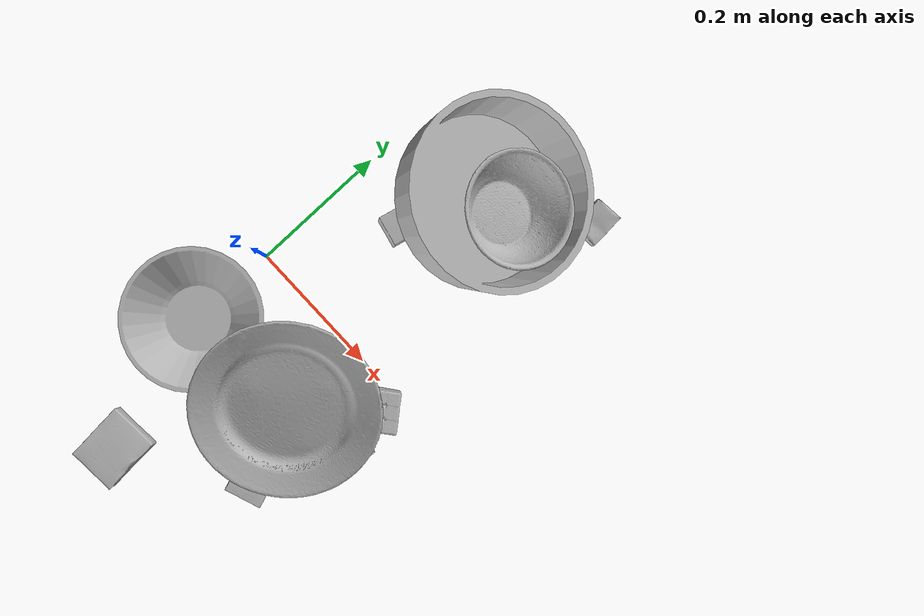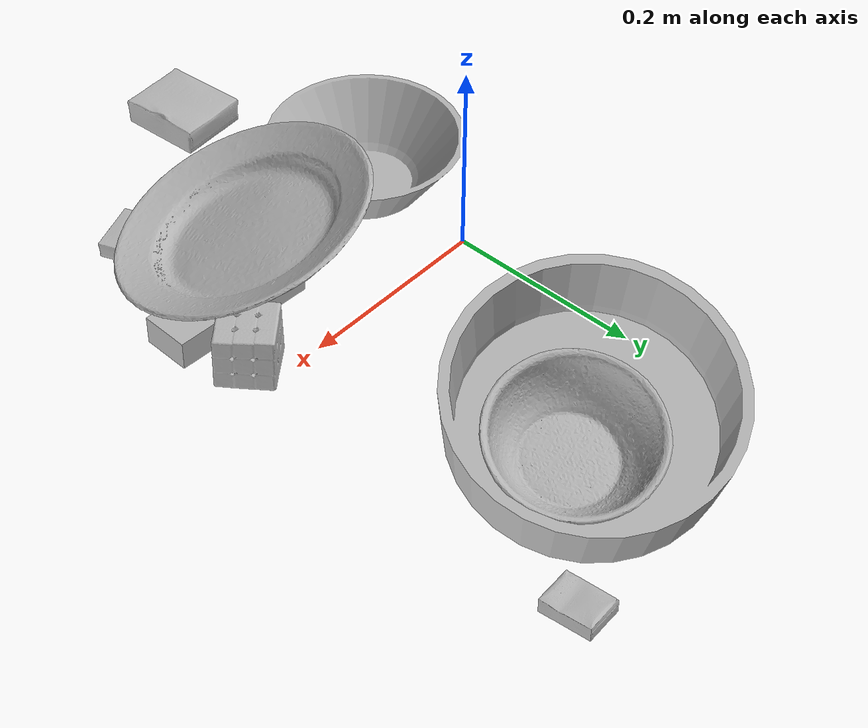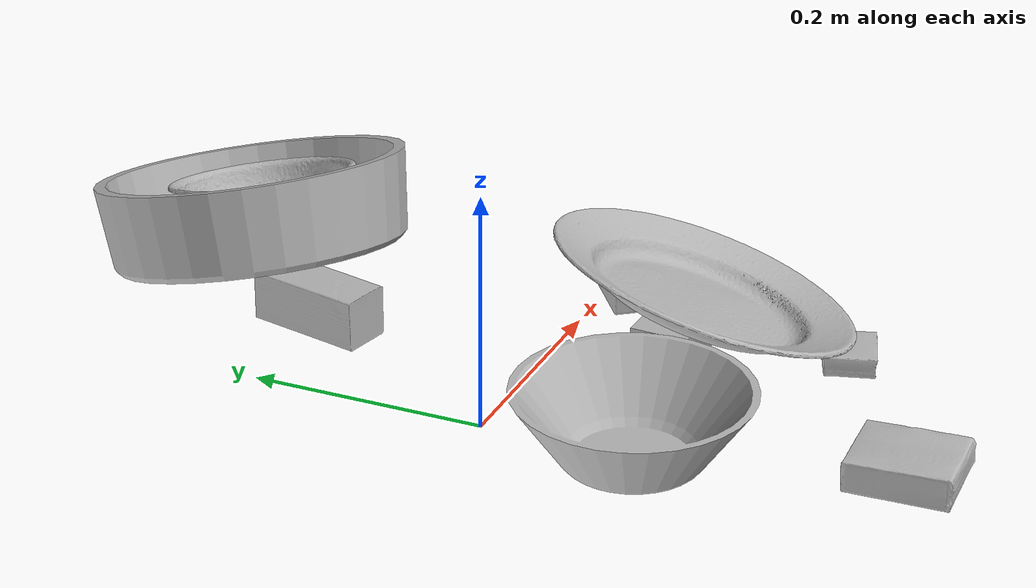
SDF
<sdf version="1.4">
  <world name="default">
    <light name="light1" type="point">
      <pose>0 0 1 0 0 0</pose>
      <diffuse>3 3 3 1</diffuse>
      <specular>3 3 3 1</specular>
    </light>
    <light name="light2" type="point">
      <pose>0 0.5 2 0 0 0</pose>
      <diffuse>1 1 1 1</diffuse>
      <specular>1 1 1 1</specular>
    </light>
    <light name="light3" type="point">
      <pose>0 0.5 2 0 0 0</pose>
      <diffuse>3 3 3 1</diffuse>
      <specular>3 3 3 1</specular>
    </light>
    <scene>
      <ambient>0.7 0.7 0.7</ambient>
    </scene>
    <model name="box1">
      <link name="link_box1">
        <collision name="default">
          <geometry>
            <mesh>
              <uri>model://pudding_box/collision_meshes/collision.obj</uri>
              <scale>0.5 0.5 0.5</scale>
            </mesh>
          </geometry>
          <surface>
            <friction>
              <ode>
                <mu>0.5</mu>
                <mu2>0.5</mu2>
              </ode>
            </friction>
          <contact>
        <ode>
            <max_vel>0</max_vel>
            <min_depth>0.0001</min_depth>
            <kp>1e8</kp>
        </ode>
    </contact></surface>
        </collision>
        <visual name="default">
          <geometry>
            <mesh>
              <uri>model://pudding_box/visual_meshes/visual.dae</uri>
              <scale>0.5 0.5 0.5</scale>
            </mesh>
          </geometry>
        </visual>
        <inertial>
          <mass>0.06043573096394539</mass>
          <pose>0.0002447410661261529 0.00040339428232982755 -0.0002594413817860186 0.005213102238104987 -0.006603800125102895 0.020079827017580043</pose>
          <inertia>
            <ixx>1.707987e-05</ixx>
            <iyy>1.1491458e-05</iyy>
            <izz>2.522289e-05</izz>
            <ixy>0</ixy>
            <ixz>0</ixz>
            <iyz>0</iyz>
          </inertia>
        </inertial>
      </link>
      <pose>0.2184973657131195 -0.23082789778709412 0.00986290629953146 0.022348504305431754 -0.011391704128081236 1.9081811655771947</pose>
    </model>
    <model name="box11">
      <link name="link_box11">
        <collision name="default">
          <geometry>
            <mesh>
              <uri>model://wood_block/collision_meshes/collision.obj</uri>
              <scale>0.5 0.5 0.5</scale>
            </mesh>
          </geometry>
          <surface>
            <friction>
              <ode>
                <mu>0.5</mu>
                <mu2>0.5</mu2>
              </ode>
            </friction>
          <contact>
        <ode>
            <max_vel>0</max_vel>
            <min_depth>0.0001</min_depth>
            <kp>1e8</kp>
        </ode>
    </contact></surface>
        </collision>
        <visual name="default">
          <geometry>
            <mesh>
              <uri>model://wood_block/visual_meshes/visual.dae</uri>
              <scale>0.5 0.5 0.5</scale>
            </mesh>
          </geometry>
        </visual>
        <inertial>
          <mass>0.22556793689727783</mass>
          <pose>-2.9066577553749084e-06 -0.000285404734313488 0.00013204290007706732 -0.05220975528916272 -0.005192696013017626 -0.0068613779154948285</pose>
          <inertia>
            <ixx>7.5461e-05</ixx>
            <iyy>0.00023838133</iyy>
            <izz>0.00023748967</izz>
            <ixy>0</ixy>
            <ixz>0</ixz>
            <iyz>0</iyz>
          </inertia>
        </inertial>
      </link>
      <pose>0.10224734246730804 0.19412297010421753 0.022695330902934074 0.0008835050902476507 0.008879649403515133 1.3429024830799985</pose>
    </model>
    <model name="box2">
      <link name="link_box2">
        <collision name="default">
          <geometry>
            <mesh>
              <uri>model://jenga/collision_meshes/collision.obj</uri>
              <scale>1.0 1.0 1.0</scale>
            </mesh>
          </geometry>
          <surface>
            <friction>
              <ode>
                <mu>0.5</mu>
                <mu2>0.5</mu2>
              </ode>
            </friction>
          <contact>
        <ode>
            <max_vel>0</max_vel>
            <min_depth>0.0001</min_depth>
            <kp>1e8</kp>
        </ode>
    </contact></surface>
        </collision>
        <visual name="default">
          <geometry>
            <mesh>
              <uri>model://jenga/visual_meshes/visual.dae</uri>
              <scale>1.0 1.0 1.0</scale>
            </mesh>
          </geometry>
        </visual>
        <inertial>
          <mass>0.2534179985523224</mass>
          <pose>-2.502856091268768e-07 -0.00010250010382151231 -4.0923401684267446e-05 0.0 -7.342154049184251e-07 0.0</pose>
          <inertia>
            <ixx>7.012692e-05</ixx>
            <iyy>0.00047517804</iyy>
            <izz>0.000507293</izz>
            <ixy>0</ixy>
            <ixz>0</ixz>
            <iyz>0</iyz>
          </inertia>
        </inertial>
      </link>
      <pose>0.22514304518699646 -0.09334777295589447 0.015000006183981895 1.4160784635712828e-06 -3.717992166666053e-07 3.0976794818030084</pose>
    </model>
    <model name="box21">
      <link name="link_box21">
        <collision name="default">
          <geometry>
            <mesh>
              <uri>model://cracker_box/collision_meshes/collision.obj</uri>
              <scale>0.25 0.25 0.25</scale>
            </mesh>
          </geometry>
          <surface>
            <friction>
              <ode>
                <mu>0.5</mu>
                <mu2>0.5</mu2>
              </ode>
            </friction>
          <contact>
        <ode>
            <max_vel>0</max_vel>
            <min_depth>0.0001</min_depth>
            <kp>1e8</kp>
        </ode>
    </contact></surface>
        </collision>
        <visual name="default">
          <geometry>
            <mesh>
              <uri>model://cracker_box/visual_meshes/visual.dae</uri>
              <scale>0.25 0.25 0.25</scale>
            </mesh>
          </geometry>
        </visual>
        <inertial>
          <mass>0.04045860841870308</mass>
          <pose>0.0002366030093980953 6.358561950037256e-05 -0.0004257383698131889 -0.0003162076898946344 -0.011106488668808423 0.0025467959335197018</pose>
          <inertia>
            <ixx>6.4317906e-06</ixx>
            <iyy>1.062015e-05</iyy>
            <izz>1.5155927e-05</izz>
            <ixy>0</ixy>
            <ixz>0</ixz>
            <iyz>0</iyz>
          </inertia>
        </inertial>
      </link>
      <pose>0.27764126658439636 0.37025606632232666 0.009096027351915836 -0.014050923157484794 -0.005016049551574524 1.6452243862095308</pose>
    </model>
    <model name="box3">
      <link name="link_box3">
        <collision name="default">
          <geometry>
            <mesh>
              <uri>model://rubiks_cube/collision_meshes/collision.obj</uri>
              <scale>1.0 1.0 1.0</scale>
            </mesh>
          </geometry>
          <surface>
            <friction>
              <ode>
                <mu>0.5</mu>
                <mu2>0.5</mu2>
              </ode>
            </friction>
          <contact>
        <ode>
            <max_vel>0</max_vel>
            <min_depth>0.0001</min_depth>
            <kp>1e8</kp>
        </ode>
    </contact></surface>
        </collision>
        <visual name="default">
          <geometry>
            <mesh>
              <uri>model://rubiks_cube/visual_meshes/visual.dae</uri>
              <scale>1.0 1.0 1.0</scale>
            </mesh>
          </geometry>
        </visual>
        <inertial>
          <mass>0.12779320776462555</mass>
          <pose>2.6721041649580002e-05 5.2569666877388954e-05 -7.264316082000732e-06 -0.054672129212199855 -0.09814057073985563 -0.03445704008669109</pose>
          <inertia>
            <ixx>7.061434e-05</ixx>
            <iyy>7.0285016e-05</iyy>
            <izz>7.119949e-05</izz>
            <ixy>0</ixy>
            <ixz>0</ixz>
            <iyz>0</iyz>
          </inertia>
        </inertial>
      </link>
      <pose>0.26007646322250366 -0.029218366369605064 0.02867894060909748 -8.401971384422279e-06 -9.076803793291444e-07 -0.8916470795142416</pose>
    </model>
    <model name="box31">
      <link name="link_box31">
        <collision name="default">
          <geometry>
            <mesh>
              <uri>model://gelatin_box/collision_meshes/collision.obj</uri>
              <scale>1.0 1.0 1.0</scale>
            </mesh>
          </geometry>
          <surface>
            <friction>
              <ode>
                <mu>0.5</mu>
                <mu2>0.5</mu2>
              </ode>
            </friction>
          <contact>
        <ode>
            <max_vel>0</max_vel>
            <min_depth>0.0001</min_depth>
            <kp>1e8</kp>
        </ode>
    </contact></surface>
        </collision>
        <visual name="default">
          <geometry>
            <mesh>
              <uri>model://gelatin_box/visual_meshes/visual.dae</uri>
              <scale>1.0 1.0 1.0</scale>
            </mesh>
          </geometry>
        </visual>
        <inertial>
          <mass>0.20050984621047974</mass>
          <pose>0.0004319618456065655 0.00011156872642459348 -0.00036403213744051754 -0.0010503720853528096 -0.004755817758068365 0.016440559471334753</pose>
          <inertia>
            <ixx>0.00014154361</ixx>
            <iyy>0.00010110386</iyy>
            <izz>0.0002154609</izz>
            <ixy>0</ixy>
            <ixz>0</ixz>
            <iyz>0</iyz>
          </inertia>
        </inertial>
      </link>
      <pose>0.05389382317662239 -0.3345926105976105 0.015168316662311554 0.005596362902945737 -0.007303333740666077 0.05531579074608063</pose>
    </model>
    <model name="plate1">
      <link name="link_plate1">
        <collision name="default">
          <geometry>
            <mesh>
              <uri>model://pan_tefal/collision_meshes/collision.obj</uri>
              <scale>1.0 1.0 1.0</scale>
            </mesh>
          </geometry>
          <surface>
            <friction>
              <ode>
                <mu>0.5</mu>
                <mu2>0.5</mu2>
              </ode>
            </friction>
          <contact>
        <ode>
            <max_vel>0</max_vel>
            <min_depth>0.0001</min_depth>
            <kp>1e8</kp>
        </ode>
    </contact></surface>
        </collision>
        <visual name="default">
          <geometry>
            <mesh>
              <uri>model://pan_tefal/visual_meshes/visual.dae</uri>
              <scale>1.0 1.0 1.0</scale>
            </mesh>
          </geometry>
        </visual>
        <inertial>
          <mass>0.9166961908340454</mass>
          <pose>-0.00018002631259150803 3.279098018538207e-05 -0.00851493515074253 0.0008190256602529888 -0.0003301357182707761 -0.33185348708971</pose>
          <inertia>
            <ixx>0.006327908</ixx>
            <iyy>0.006368705</iyy>
            <izz>0.01164846</izz>
            <ixy>0</ixy>
            <ixz>0</ixz>
            <iyz>0</iyz>
          </inertia>
        </inertial>
      </link>
      <pose>0.14979523420333862 0.27547580003738403 0.0715741515159607 -0.23568824785996412 -0.2057768120398728 -1.4046855309072324</pose>
    </model>
    <model name="bowl1">
      <link name="link_bowl1">
        <collision name="default">
          <geometry>
            <mesh>
              <uri>model://bowl_a/collision_meshes/collision.obj</uri>
              <scale>1.0 1.0 1.0</scale>
            </mesh>
          </geometry>
          <surface>
            <friction>
              <ode>
                <mu>0.5</mu>
                <mu2>0.5</mu2>
              </ode>
            </friction>
          <contact>
        <ode>
            <max_vel>0</max_vel>
            <min_depth>0.0001</min_depth>
            <kp>1e8</kp>
        </ode>
    </contact></surface>
        </collision>
        <visual name="default">
          <geometry>
            <mesh>
              <uri>model://bowl_a/visual_meshes/visual.dae</uri>
              <scale>1.0 1.0 1.0</scale>
            </mesh>
          </geometry>
        </visual>
        <inertial>
          <mass>0.44606471061706543</mass>
          <pose>0.0002786746481433511 4.7312179958680645e-05 -0.0013765294570475817 -0.0009805488171165768 -0.0010938123304380014 -0.19122487556540352</pose>
          <inertia>
            <ixx>0.0012699668</ixx>
            <iyy>0.001277764</iyy>
            <izz>0.0022586845</izz>
            <ixy>0</ixy>
            <ixz>0</ixz>
            <iyz>0</iyz>
          </inertia>
        </inertial>
      </link>
      <pose>-0.00034539736225269735 -0.1290072351694107 0.030382581055164337 -7.2635993695125235e-06 -1.959671428808724e-06 -2.845897898778671</pose>
    </model>
    <model name="plate2">
      <link name="link_plate2">
        <collision name="default">
          <geometry>
            <mesh>
              <uri>model://plate/collision_meshes/collision.obj</uri>
              <scale>1.0 1.0 1.0</scale>
            </mesh>
          </geometry>
          <surface>
            <friction>
              <ode>
                <mu>0.5</mu>
                <mu2>0.5</mu2>
              </ode>
            </friction>
          <contact>
        <ode>
            <max_vel>0</max_vel>
            <min_depth>0.0001</min_depth>
            <kp>1e8</kp>
        </ode>
    </contact></surface>
        </collision>
        <visual name="default">
          <geometry>
            <mesh>
              <uri>model://plate/visual_meshes/visual.dae</uri>
              <scale>1.0 1.0 1.0</scale>
            </mesh>
          </geometry>
        </visual>
        <inertial>
          <mass>0.10088177025318146</mass>
          <pose>-0.0006044645560905337 0.0002782582596410066 -0.0010561994276940823 0.002218810424575964 -0.003225458488037908 0.4526011088858205</pose>
          <inertia>
            <ixx>0.00047192685</ixx>
            <iyy>0.00046741302</iyy>
            <izz>0.00092301855</izz>
            <ixy>0</ixy>
            <ixz>0</ixz>
            <iyz>0</iyz>
          </inertia>
        </inertial>
      </link>
      <pose>0.1736021637916565 -0.11739404499530792 0.06307812035083771 -0.3534545852717065 -0.04441375116702503 -2.53567302186081</pose>
    </model>
    <model name="bowl2">
      <link name="link_bowl2">
        <collision name="default">
          <geometry>
            <mesh>
              <uri>model://bowl/collision_meshes/collision.obj</uri>
              <scale>1.0 1.0 1.0</scale>
            </mesh>
          </geometry>
          <surface>
            <friction>
              <ode>
                <mu>0.5</mu>
                <mu2>0.5</mu2>
              </ode>
            </friction>
          <contact>
        <ode>
            <max_vel>0</max_vel>
            <min_depth>0.0001</min_depth>
            <kp>1e8</kp>
        </ode>
    </contact></surface>
        </collision>
        <visual name="default">
          <geometry>
            <mesh>
              <uri>model://bowl/visual_meshes/visual.dae</uri>
              <scale>1.0 1.0 1.0</scale>
            </mesh>
          </geometry>
        </visual>
        <inertial>
          <mass>0.10570208728313446</mass>
          <pose>0.00020445376867428422 -0.00103021040558815 -0.000804263399913907 -0.015764090239829616 0.014546785988443214 0.7140402180265782</pose>
          <inertia>
            <ixx>0.00024280604</ixx>
            <iyy>0.0002373808</iyy>
            <izz>0.0004084832</izz>
            <ixy>0</ixy>
            <ixz>0</ixz>
            <iyz>0</iyz>
          </inertia>
        </inertial>
      </link>
      <pose>0.1834201067686081 0.28391900658607483 0.05974600464105606 0.0463771930856441 -0.31158936301402956 -2.4296786025593198</pose>
    </model>
  <physics type="ode">
      <max_contacts>50</max_contacts>
      <ode>
        <solver>
          <type>quick</type>
          <iters>75</iters>
        </solver>
        <constraints>
          <contact_max_correcting_vel>0</contact_max_correcting_vel>
          <contact_surface_layer>0</contact_surface_layer>
        </constraints>
      </ode>
    </physics></world>
</sdf>
